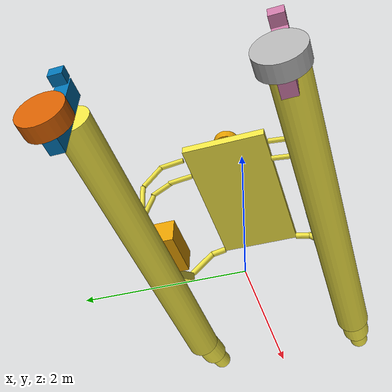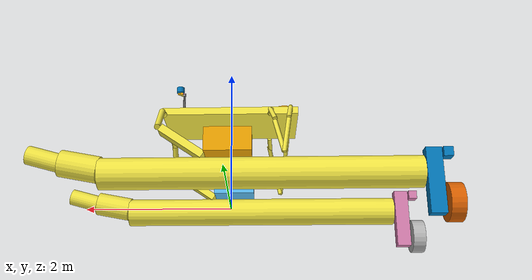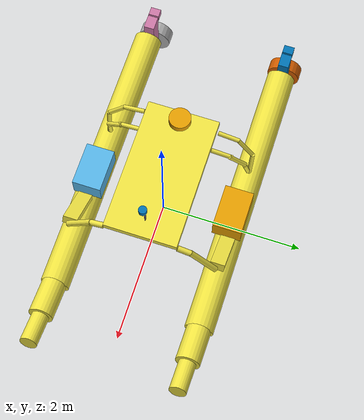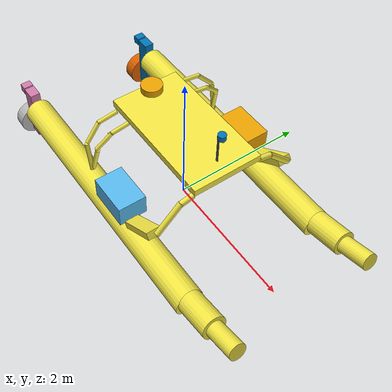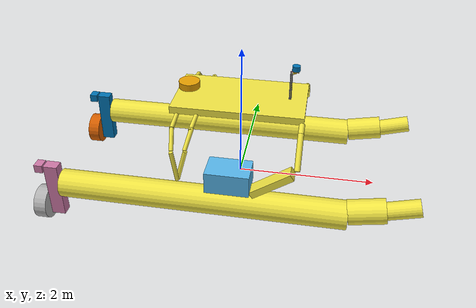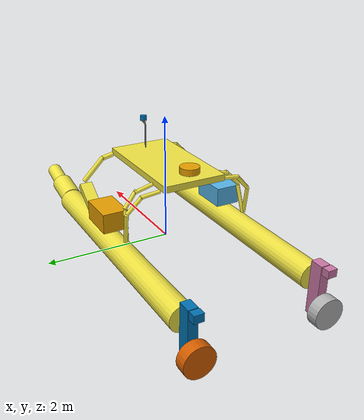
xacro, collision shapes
<?xml version="1.0" ?>
<robot xmlns:xacro="http://ros.org/wiki/xacro" name="wamv">
  <!-- Include macros for dynamic plugins -->
  <xacro:include filename="$(find moos_gazebo)/config/wamv/components/component_macros.xacro" />

  <xacro:arg name="tf_prefix" default="tf_prefix_not_set"/>
  <xacro:property name="tf_prefix" value="$(arg tf_prefix)" scope="global"/>

  <!-- Note: this is only used for some sensors that do not correctly use
       the robotNamespace parameter -->
  <xacro:arg name="namespace" default="namespace_not_set"/>
  <xacro:property name="namespace" value="$(arg namespace)" scope="global"/>

  <!-- Robot Mesh -->
  <xacro:include filename="$(find moos_gazebo)/config/wamv/wamv_base.urdf.xacro"/>

  <!-- Load Sensors -->
  <xacro:arg name="sensor_namespace" default="sensors/"/>
  <xacro:property name="sensor_namespace" value="$(arg sensor_namespace)" scope="global"/>
  <xacro:arg name="camera_namespace" default="cameras/"/>
  <xacro:property name="camera_namespace" value="$(arg camera_namespace)" scope="global"/>
  <!-- Front Camera Generic if there is not a URDF set up by camera driver: 'camera.xacro' -->
  <xacro:camera name="front_camera" x="0.75" y="0.0" z="1.7283" />
  <!-- OAK-D TF and URDF is launch within the specific launch file -->
  <!-- Port Camera Generic: 'camera.xacro' -->
  <!-- Front Lidar -->
  <xacro:lidar name="front_lidar" x="0.75" z="1.7828"/>
  <!-- IMU/GNSS  -->
  <xacro:imu name="imu_gnss_xsens" x="0.77" />
  <!-- GPS -->
  <xacro:gps name="gps_hemisphere" x="-0.75"  />
  <!-- Marine Radar -->
  <!-- This is only a model to represent transforms,
       do not yet have a working marine radar simulator -->
  <xacro:radar name="radar_broadband" x="0.75" z="1.95"/>

</robot>

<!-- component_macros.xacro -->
<robot xmlns:xacro="http://ros.org/wiki/xacro" name="wamv">

  <!-- Sensor Macros -->
  <xacro:include filename="$(find moos_gazebo)/config/wamv/components/camera.xacro" />
  <xacro:include filename="$(find moos_gazebo)/config/wamv/components/lidar.xacro" />
  <xacro:include filename="$(find moos_gazebo)/config/wamv/components/imu.xacro" />
  <xacro:include filename="$(find moos_gazebo)/config/wamv/components/gps.xacro" />
  <xacro:include filename="$(find moos_gazebo)/config/wamv/components/radar.xacro" />
  <xacro:include filename="$(find moos_gazebo)/config/wamv/components/april.xacro" />
</robot>

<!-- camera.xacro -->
<robot xmlns:xacro="http://ros.org/wiki/xacro">
  <xacro:macro name="camera" params="name x:=0.5 y:=0 z:=1.5 post_z_from:=1.2965 R:=0 P:=0 Y:=0 post_Y:=0 visualize:=False">
    <!-- Define length variables for link positioning -->
    <xacro:property name="platform_z" value="${post_z_from}"/>
    <xacro:property name="post_to_post_arm_x" value="0.03"/>
    <xacro:property name="post_arm_to_camera_x" value="0.02"/>
    <xacro:property name="post_arm_to_camera_z" value="0.027"/>

    <!-- Monocular Camera -->
    <link name="${tf_prefix}/${namespace}/${name}_link">
      <visual name="${name}_visual">
        <origin xyz="-0.033 0 0" rpy="0 0 ${pi/2}"/>
        <geometry>
          <mesh filename="package://vrx_gazebo/models/mono_camera/mesh/mono_camera.dae"/>
        </geometry>
      </visual>
      <collision name="${name}_lens_collision">
        <origin xyz="0.018 0 0" rpy="0 ${pi/2} 0"/>
        <geometry>
          <cylinder radius="0.015" length="0.042"/>
        </geometry>
      </collision>
      <collision name="${name}_box_collision">
        <origin xyz="-0.0205 0 0" rpy="0 0 0"/>
        <geometry>
          <box size="0.036 0.03 0.03"/>
        </geometry>
      </collision>
      <inertial>
        <mass value="0.3"/>
        <inertia
          ixx="0.0000450"
          iyy="0.0001746"
          izz="0.0001746"
          ixy="0"
          ixz="0"
          iyz="0"/>
      </inertial>
    </link>

    <!-- Define a link for the optical frame.  This will match the sensor frame and
         be oriented in the camera convention. -->
    <link name="${tf_prefix}/${namespace}/${name}_link_optical">
    </link>

    <!-- Define post length and mass based on desired z position of sensor -->
    <xacro:property name="post_length" value="${z-platform_z-post_arm_to_camera_z}"/>
    <xacro:property name="post_mass_per_meter" value="0.9"/>
    <xacro:property name="post_mass" value="${post_mass_per_meter * post_length}"/>
    <xacro:property name="post_radius" value="0.0076"/>

    <!-- Sensor post -->
    <link name="${tf_prefix}/${namespace}/${name}_post_link">
      <visual>
        <geometry>
          <cylinder radius="${post_radius}" length="${post_length}"/>
        </geometry>
        <material name="${name}_post_material">
          <color rgba="0.0 0.0 0.0 1.0"/>
        </material>
      </visual>
      <collision name="${name}_post_collision">
        <geometry>
          <cylinder radius="${post_radius}" length="${post_length}"/>
        </geometry>
      </collision>
      <inertial>
        <mass value="${post_mass}"/>
        <inertia
          ixx="${(post_mass/12) * (3*post_radius*post_radius + post_length*post_length)}"
          iyy="${(post_mass/12) * (3*post_radius*post_radius + post_length*post_length)}"
          izz="${(post_mass/2) * (post_radius*post_radius)}"
          ixy="0"
          ixz="0"
          iyz="0"/>
      </inertial>
    </link>

    <!-- Sensor post arm -->
    <link name="${tf_prefix}/${namespace}/${name}_post_arm_link">
      <visual name="${name}_post_arm_visual">
        <origin xyz="-0.038 0 -0.003" rpy="${radians(-60)} 0 ${-pi/2}"/>
        <geometry>
          <mesh filename="package://vrx_gazebo/models/sensor_post/mesh/sensor_post_arm.dae"/>
        </geometry>
      </visual>
      <collision name="${name}_post_arm_collision">
        <origin xyz="0 0 0" rpy="${radians(-60)-pi/20} 0 ${-pi/2}"/>
        <geometry>
          <cylinder radius="0.008" length="0.065"/>
        </geometry>
      </collision>
      <inertial>
        <origin xyz="0 0 0" rpy="${radians(-60)-pi/20} 0 ${-pi/2}"/>
        <mass value="0.1"/>
        <inertia
          ixx="0.00003680833"
          iyy="0.00003680833"
          izz="0.00000320000"
          ixy="0"
          ixz="0"
          iyz="0"/>
      </inertial>
    </link>

    <!-- Base to sensor post joint -->
    <xacro:property name="post_z" value="${platform_z+post_length/2}"/>
    <xacro:property name="post_to_camera_x" value="${post_to_post_arm_x+post_arm_to_camera_x}"/>
    <joint name="${tf_prefix}/${namespace}/base_to_${name}_post_joint" type="fixed">
      <origin xyz="${x-(post_to_camera_x)*cos(post_Y)} ${y-(post_to_camera_x)*sin(post_Y)} ${post_z}" rpy="0 0 ${post_Y}" />
      <parent link="${tf_prefix}/${namespace}/base_link" />
      <child link="${tf_prefix}/${namespace}/${name}_post_link" />
    </joint>

    <!-- Sensor post to sensor post arm joint -->
    <joint name="${tf_prefix}/${namespace}/${name}_post_to_${name}_post_arm_joint" type="fixed">
      <origin xyz="${post_to_post_arm_x} 0 ${z-post_z-post_arm_to_camera_z}" rpy="0 0 0" />
      <parent link="${tf_prefix}/${namespace}/${name}_post_link" />
      <child link="${tf_prefix}/${namespace}/${name}_post_arm_link" />
    </joint>

    <!-- Sensor post arm to camera joint -->
    <joint name="${tf_prefix}/${namespace}/${name}_post_arm_to_${name}_joint" type="fixed">
      <origin xyz="${post_arm_to_camera_x} 0 ${post_arm_to_camera_z}" rpy="${R} ${P} ${Y-post_Y}" />
      <parent link="${tf_prefix}/${namespace}/${name}_post_arm_link" />
      <child link="${tf_prefix}/${namespace}/${name}_link" />
    </joint>

    <!-- Camera to optical frame joint.  This is oriented to convert between ENU
         and camera conventions -->
    <joint name="${tf_prefix}/${namespace}/${name}_to_${name}_link_optical_joint" type="fixed">
      <origin xyz="0 0 0" rpy="${-pi/2} 0 ${-pi/2}" />
      <parent link="${tf_prefix}/${namespace}/${name}_link" />
      <child link="${tf_prefix}/${namespace}/${name}_link_optical" />
    </joint>

    <!-- Gazebo camera setup -->
    <gazebo reference="${tf_prefix}/${namespace}/${name}_link">
      <sensor type="camera" name="${name}_sensor">
        <update_rate>30.0</update_rate>
        <xacro:if value="${visualize}">
          <visualize>true</visualize>
        </xacro:if>
        <camera name="${name}_camera">
          <horizontal_fov>1.3962634</horizontal_fov>
          <image>
            <width>1280</width>
            <height>720</height>
            <format>R8G8B8</format>
          </image>
          <clip>
            <near>0.05</near>
            <far>300</far>
          </clip>
          <noise>
            <type>gaussian</type>
            <mean>0.0</mean>
            <stddev>0.007</stddev>
          </noise>
        </camera>
        <plugin name="camera_plugin_${name}" filename="libgazebo_ros_camera.so">
          <alwaysOn>true</alwaysOn>
          <updateRate>0.0</updateRate>
          <cameraName>${namespace}/${sensor_namespace}${camera_namespace}${name}</cameraName>
          <imageTopicName>image_raw</imageTopicName>
          <cameraInfoTopicName>camera_info</cameraInfoTopicName>
          <frameName>${tf_prefix}/${namespace}/${name}_link_optical</frameName>
          <hackBaseline>0.07</hackBaseline>
          <distortionK1>0.0</distortionK1>
          <distortionK2>0.0</distortionK2>
          <distortionK3>0.0</distortionK3>
          <distortionT1>0.0</distortionT1>
          <distortionT2>0.0</distortionT2>
        </plugin>
      </sensor>
    </gazebo>

    <!-- Set color of post -->
    <gazebo reference="${tf_prefix}/${namespace}/${name}_post_link">
      <material>Gazebo/Black</material>
    </gazebo>

  </xacro:macro>
</robot>

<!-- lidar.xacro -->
<robot xmlns:xacro="http://ros.org/wiki/xacro">
  <xacro:macro name="lidar" params="name
                                            x:=0.7 y:=0 z:=1.8
                                            R:=0 P:=0 Y:=0
                                            post_Y:=0 post_z_from:=1.2965
                                            update_rate:=10 vertical_lasers:=16 samples:=1875 resolution:=0.1
                                            min_angle:=${-pi} max_angle:=${pi}
                                            min_vertical_angle:=${-pi/12} max_vertical_angle:=${pi/12}
                                            max_range:=130 noise_stddev:=0.01">
    <!-- Define length variables for link positioning -->
    <xacro:property name="platform_z" value="${post_z_from}"/>
    <xacro:property name="post_to_post_arm_x" value="0.03"/>
    <xacro:property name="post_arm_to_lidar_x" value="0.04"/>
    <xacro:property name="post_arm_to_lidar_z" value="0.05"/>

    <!-- 3d lidar sensor -->
    <link name="${tf_prefix}/${namespace}/${name}_link">
      <visual name="${name}_visual">
        <origin xyz="0 0 -0.035" rpy="0 0 0"/>
        <geometry>
          <mesh filename="package://vrx_gazebo/models/3d_lidar/mesh/3d_lidar.dae"/>
        </geometry>
      </visual>
      <collision name="${name}_collision">
        <geometry>
          <cylinder radius="0.055" length="0.075"/>
        </geometry>
      </collision>
      <inertial>
        <mass value="1"/>
        <inertia
          ixx="0.00109375"
          iyy="0.00109375"
          izz="0.00125"
          ixy="0"
          ixz="0"
          iyz="0"/>
      </inertial>
    </link>

    <!-- Define post length and mass based on desired z position of sensor -->
    <xacro:property name="post_length" value="${z-platform_z-post_arm_to_lidar_z}"/>
    <xacro:property name="post_mass_per_meter" value="0.9"/>
    <xacro:property name="post_mass" value="${post_mass_per_meter * post_length}"/>
    <xacro:property name="post_radius" value="0.0076"/>

    <!-- Sensor post -->
    <link name="${tf_prefix}/${namespace}/${name}_post_link">
      <visual>
        <geometry>
          <cylinder radius="${post_radius}" length="${post_length}"/>
        </geometry>
        <material name="${name}_post_material">
          <color rgba="0.0 0.0 0.0 1.0"/>
        </material>
      </visual>
      <collision name="${name}_post_collision">
        <geometry>
          <cylinder radius="${post_radius}" length="${post_length}"/>
        </geometry>
      </collision>
      <inertial>
        <mass value="${post_mass}"/>
        <inertia
          ixx="${(post_mass/12) * (3*post_radius*post_radius + post_length*post_length)}"
          iyy="${(post_mass/12) * (3*post_radius*post_radius + post_length*post_length)}"
          izz="${(post_mass/2) * (post_radius*post_radius)}"
          ixy="0"
          ixz="0"
          iyz="0"/>
      </inertial>
    </link>

    <!-- Sensor post arm -->
    <link name="${tf_prefix}/${namespace}/${name}_post_arm_link">
      <visual name="${name}_post_arm_visual">
        <origin xyz="-0.038 0 -0.003" rpy="${radians(-60)} 0 ${-pi/2}"/>
        <geometry>
          <mesh filename="package://vrx_gazebo/models/sensor_post/mesh/sensor_post_arm.dae"/>
        </geometry>
      </visual>
      <collision name="${name}_post_arm_collision">
        <origin xyz="0 0 0" rpy="${radians(-60)-pi/20} 0 ${-pi/2}"/>
        <geometry>
          <cylinder radius="0.008" length="0.065"/>
        </geometry>
      </collision>
      <inertial>
        <origin xyz="0 0 0" rpy="${radians(-60)-pi/20} 0 ${-pi/2}"/>
        <mass value="0.1"/>
        <inertia
          ixx="0.00003680833"
          iyy="0.00003680833"
          izz="0.00000320000"
          ixy="0"
          ixz="0"
          iyz="0"/>
      </inertial>
    </link>

    <!-- Base to sensor post joint -->
    <xacro:property name="post_z" value="${platform_z+post_length/2}"/>
    <xacro:property name="post_to_lidar_x" value="${post_to_post_arm_x+post_arm_to_lidar_x}"/>
    <joint name="${tf_prefix}/${namespace}/base_to_${name}_post_joint" type="fixed">
      <origin xyz="${x-(post_to_lidar_x)*cos(post_Y)} ${y-(post_to_lidar_x)*sin(post_Y)} ${post_z}" rpy="0 0 ${post_Y}" />
      <parent link="${tf_prefix}/${namespace}/base_link" />
      <child link="${tf_prefix}/${namespace}/${name}_post_link" />
    </joint>

    <!-- Sensor post to sensor post arm joint -->
    <joint name="${tf_prefix}/${namespace}/${name}_post_to_${name}_post_arm_joint" type="fixed">
      <origin xyz="${post_to_post_arm_x} 0 ${z-post_z-post_arm_to_lidar_z}" rpy="0 0 0" />
      <parent link="${tf_prefix}/${namespace}/${name}_post_link" />
      <child link="${tf_prefix}/${namespace}/${name}_post_arm_link" />
    </joint>

    <!-- Sensor post arm to lidar joint -->
    <joint name="${tf_prefix}/${namespace}/${name}_post_arm_to_${name}_joint" type="fixed">
      <origin xyz="${post_arm_to_lidar_x} 0 ${post_arm_to_lidar_z}" rpy="${R} ${P} ${Y-post_Y}" />
      <parent link="${tf_prefix}/${namespace}/${name}_post_arm_link" />
      <child link="${tf_prefix}/${namespace}/${name}_link" />
    </joint>

    <gazebo reference="${tf_prefix}/${namespace}/${name}_link">
      <sensor type="gpu_ray" name="${name}_sensor">
        <update_rate>${update_rate}</update_rate>
        <ray>
          <scan>
            <horizontal>
              <samples>${samples/resolution}</samples>
              <resolution>${resolution}</resolution>
              <min_angle>${min_angle}</min_angle>
              <max_angle>${max_angle}</max_angle>
            </horizontal>
            <vertical>
              <samples>${vertical_lasers}</samples>
              <resolution>1</resolution>
              <min_angle>${min_vertical_angle}</min_angle>
              <max_angle>${max_vertical_angle}</max_angle>
            </vertical>
          </scan>
          <range>
            <min>0.1</min>
            <max>${max_range}</max>
          </range>
          <noise>
            <type>gaussian</type>
            <mean>0.0</mean>
            <stddev>${noise_stddev}</stddev>
          </noise>
        </ray>
        <plugin name="${name}_plugin" filename="libgazebo_ros_velodyne_gpu_laser.so">
          <topicName>${namespace}/${sensor_namespace}lidars/${name}/points</topicName>
          <frameName>${namespace}/${name}_link</frameName>
          <min_intensity>0</min_intensity>
        </plugin>
      </sensor>
    </gazebo>

    <!-- Set color of post -->
    <gazebo reference="${tf_prefix}/${namespace}/${name}_post_link">
      <material>Gazebo/Black</material>
    </gazebo>
  </xacro:macro>
</robot>

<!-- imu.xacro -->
<robot xmlns:xacro="http://ros.org/wiki/xacro">
  <xacro:macro name="imu" params="name:=imu x:=0.3 y:=0.0 z:=1.3 R:=0 P:=0 Y:=0 update_rate:=15">
    <link name="${tf_prefix}/${namespace}/${name}_link">
      <visual name="${name}_visual">
        <geometry>
          <box size="0.05 0.025 0.005" />
        </geometry>
        <material name="${name}_visual_material">
          <color rgba="1.0 0.0 00 1.0" />
        </material>
      </visual>
      <inertial>
        <mass value="0.1"/>
        <inertia ixx="0.000083" ixy="0.0" ixz="0.0" iyy="0.000083" iyz="0.0" izz="0.0125"/>
      </inertial>
    </link>
    <joint name="${tf_prefix}/${namespace}/${name}_joint" type="revolute">
      <axis xyz="0 0 1"/>
      <limit effort="1000.0" lower="0.0" upper="0" velocity="0"/>
      <origin xyz="${x} ${y} ${z}" rpy="${R} ${P} ${Y}"/>
      <parent link="${tf_prefix}/${namespace}/base_link"/>
      <child link="${tf_prefix}/${namespace}/${name}_link"/>
    </joint>
    <gazebo>
      <plugin name="imu_plugin_${name}" filename="libhector_gazebo_ros_imu.so">
        <updateRate>${update_rate}</updateRate>
        <bodyName>${tf_prefix}/${namespace}/${name}_link</bodyName>
        <topicName>${namespace}/${sensor_namespace}imu/imu/data</topicName>
        <serviceName>${namespace}/${sensor_namespace}imu_service</serviceName>
        <!-- Manually prepend namespace to tf frame. -->
        <frameId>${tf_prefix}/${namespace}/${name}_link</frameId>
        <alwaysOn>true</alwaysOn>

        <accelOffset>0.0 0.0 0.0</accelOffset>
        <accelDrift>0.0 0.0 0.0</accelDrift>
        <accelDriftFrequency>0.00027 0.00027 0.000027</accelDriftFrequency>
        <accelGaussianNoise>0.0 0.0 0.0</accelGaussianNoise>

        <rateOffset>0.0 0.0 0.0</rateOffset>
        <rateDrift>0.0 0.0 0.0</rateDrift>
        <rateDriftFrequency>0.00027 0.00027 0.000027</rateDriftFrequency>
        <rateGaussianNoise>0.0 0.0 0.0</rateGaussianNoise>

        <yawOffset>0.0</yawOffset>
        <yawDrift>0.0</yawDrift>
        <yawDriftFrequency>0.00027</yawDriftFrequency>
        <yawGaussianNoise>0.0</yawGaussianNoise>

      </plugin>
    </gazebo>
  </xacro:macro>
</robot>

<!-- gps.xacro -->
<robot xmlns:xacro="http://ros.org/wiki/xacro">
  <xacro:macro name="gps" params="name:=gps x:=0.3 y:=0 z:=1.3
				       R:=0 P:=0 Y:=0 update_rate:=15">
    <link name="${tf_prefix}/${namespace}/${name}_link">
      <visual name="${name}_visual">
        <geometry>
          <mesh filename="package://wamv_gazebo/models/gps/mesh/gps.dae"/>
        </geometry>
      </visual>
      <collision name="${name}_collision_base">
        <origin xyz="0 0 0.025" rpy="0 0 0" />
        <geometry>
          <cylinder length="0.05" radius="0.015" />
        </geometry>
      </collision>
      <collision name="${name}_collision_antenna">
        <origin xyz="0 0 0.11" rpy="0 0 0" />
        <geometry>
          <cylinder length="0.1" radius="0.15" />
        </geometry>
      </collision>
      <inertial>
        <mass value="1"/>
        <inertia ixx="0.006458" ixy="0.0" ixz="0.0"
		 iyy="0.006458" iyz="0.0" izz="0.01125"/>
      </inertial>
    </link>
    <joint name="${tf_prefix}/${namespace}/${name}_joint" type="revolute">
      <axis xyz="0 0 1"/>
      <limit effort="1000.0" lower="0.0" upper="0" velocity="0"/>
      <origin xyz="${x} ${y} ${z}" rpy="${R} ${P} ${Y}" />
      <parent link="${tf_prefix}/${namespace}/base_link" />
      <child link="${tf_prefix}/${namespace}/${name}_link" />
    </joint>
    <gazebo>
      <plugin name="gps_plugin_${name}" filename="libhector_gazebo_ros_gps.so">
        <updateRate>${update_rate}</updateRate>
        <alwaysOn>true</alwaysOn>
        <bodyName>${tf_prefix}/${namespace}/${name}_link</bodyName>
        <!-- Manually prepend namespace to tf frame. -->
        <frameId>${tf_prefix}/${namespace}/${name}_link</frameId>
        <topicName>${namespace}/${sensor_namespace}gps/gps/fix</topicName>
        <velocityTopicName>${namespace}/${sensor_namespace}gps/gps/fix_velocity</velocityTopicName>
	<useWorldSphericalCoordinates>true</useWorldSphericalCoordinates>

        <offset>0.0 0.0 0.0</offset>
        <drift>0.0 0.0 0.0</drift>
        <gaussianNoise>0 0 0</gaussianNoise>
        <velocityOffset>0.0 0.0 0.0</velocityOffset>
        <velocityDrift>0.0 0.0 0.0</velocityDrift>
        <velocityGaussianNoise>0.0 0.0 0.0</velocityGaussianNoise>
      </plugin>
    </gazebo>
  </xacro:macro>
</robot>

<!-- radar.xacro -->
<robot xmlns:xacro="http://ros.org/wiki/xacro">
  <xacro:macro name="radar" params="name:=gps x:=0.3 y:=0 z:=1.3
				       R:=0 P:=0 Y:=0 update_rate:=15">
    <link name="${tf_prefix}/${namespace}/${name}_link">
      <visual name="${name}_visual">
        <geometry>
          <cylinder length="0.18" radius="0.244" />
        </geometry>
	<material name="${name}_visual_material">
	  <color rgba="1.0 1.0 1.0 1.0" />
	</material>
      </visual>
      <inertial>
        <mass value="1"/>
        <inertia ixx="0.006458" ixy="0.0" ixz="0.0"
		 iyy="0.006458" iyz="0.0" izz="0.01125"/>
      </inertial>
    </link>
    <joint name="${tf_prefix}/${namespace}/${name}_joint" type="revolute">
      <axis xyz="0 0 1"/>
      <limit effort="1000.0" lower="0.0" upper="0" velocity="0"/>
      <origin xyz="${x} ${y} ${z}" rpy="${R} ${P} ${Y}" />
      <parent link="${tf_prefix}/${namespace}/base_link" />
      <child link="${tf_prefix}/${namespace}/${name}_link" />
    </joint>
  </xacro:macro>
</robot>

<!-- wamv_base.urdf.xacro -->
<!-- WAMV Base with namespace changes 2023-12-12 -->
<!-- Basic WAM-V with gazebo plugins for dynamics -->
<robot name="wamv">
  <link name="${tf_prefix}/${namespace}/left_battery_link">
    <visual name="left_battery_visual">
      <origin rpy="0 0 0" xyz="0 -1.03 -.45"/>
      <geometry>
        <mesh filename="package://vrx_gazebo/models/battery/mesh/battery.dae"/>
      </geometry>
    </visual>
    <collision name="left_battery_collision">
      <origin rpy="0 0 0" xyz="0 0 .15"/>
      <geometry>
        <box size=".6 .4 .31"/>
      </geometry>
    </collision>
    <inertial>
      <origin rpy=" 0 0 0" xyz="0 0 .15"/>
      <mass value="23.5"/>
      <inertia ixx="0.5015291666666667" ixy="0" ixz="0" iyy="0.8931958333333333" iyz="0" izz="1.0183333333333333"/>
    </inertial>
  </link>
  <joint name="${tf_prefix}/${namespace}/left_chasis_battery_joint" type="fixed">
    <origin rpy="0 0 0" xyz="0 1 0.45"/>
    <parent link="${tf_prefix}/${namespace}/base_link"/>
    <child link="${tf_prefix}/${namespace}/left_battery_link"/>
  </joint>
  <link name="${tf_prefix}/${namespace}/right_battery_link">
    <visual name="right_battery_visual">
      <origin rpy="0 0 0" xyz="0 -1.03 -.45"/>
      <geometry>
        <mesh filename="package://vrx_gazebo/models/battery/mesh/battery.dae"/>
      </geometry>
    </visual>
    <collision name="right_battery_collision">
      <origin rpy="0 0 0" xyz="0 0 .15"/>
      <geometry>
        <box size=".6 .4 .31"/>
      </geometry>
    </collision>
    <inertial>
      <origin rpy=" 0 0 0" xyz="0 0 .15"/>
      <mass value="23.5"/>
      <inertia ixx="0.5015291666666667" ixy="0" ixz="0" iyy="0.8931958333333333" iyz="0" izz="1.0183333333333333"/>
    </inertial>
  </link>
  <joint name="${tf_prefix}/${namespace}/right_chasis_battery_joint" type="fixed">
    <origin rpy="0 0 0" xyz="0 -1 0.45"/>
    <parent link="${tf_prefix}/${namespace}/base_link"/>
    <child link="${tf_prefix}/${namespace}/right_battery_link"/>
  </joint>
  <link name="${tf_prefix}/${namespace}/base_link">
  </link>
  <joint name="${tf_prefix}/${namespace}/dummy_joint" type="fixed">
    <parent link="${tf_prefix}/${namespace}/base_link"/>
    <child link="${tf_prefix}/${namespace}/dummy_link"/>
  </joint>
  <!-- Basic model of the 16' WAM-V USV -->
  <link name="${tf_prefix}/${namespace}/dummy_link">
    <visual>
      <geometry>
        <mesh filename="package://wamv_description/models/WAM-V-Base/mesh/WAM-V-Base.dae"/>
      </geometry>
    </visual>
    <!-- Main float -->
    <collision name="left_float">
      <origin rpy="0 1.57 0" xyz="-0.4 1.03 0.2"/>
      <geometry>
        <cylinder length="4" radius="0.2"/>
      </geometry>
    </collision>
    <collision name="left_mid_float">
      <origin rpy="0 1.38 0" xyz="1.85 1.03 0.3"/>
      <geometry>
        <cylinder length="0.5" radius="0.17"/>
      </geometry>
    </collision>
    <collision name="left_front_float">
      <origin rpy="0 1.3 0" xyz="2.3 1.03 0.4"/>
      <geometry>
        <cylinder length="0.45" radius="0.12"/>
      </geometry>
    </collision>
    <!-- Front beam -->
    <collision name="front_left_beam_lower">
      <origin rpy="0.78 0 0" xyz="0.9 0.85 1"/>
      <geometry>
        <cylinder length="0.5" radius="0.04"/>
      </geometry>
    </collision>
    <collision name="front_left_beam_upper">
      <origin rpy="1.35 0 0" xyz="0.9 0.6 1.18"/>
      <geometry>
        <cylinder length="0.2" radius="0.04"/>
      </geometry>
    </collision>
    <!-- Mid beam -->
    <collision name="mid_left_beam_lower">
      <origin rpy="0.1 0.25 0" xyz="-0.65 0.99 0.7"/>
      <geometry>
        <cylinder length="0.45" radius="0.03"/>
      </geometry>
    </collision>
    <collision name="mid_left_beam_medium">
      <origin rpy="0.75 0.25 0" xyz="-0.57 0.87 1.05"/>
      <geometry>
        <cylinder length="0.32" radius="0.03"/>
      </geometry>
    </collision>
    <collision name="mid_left_beam_upper">
      <origin rpy="1.35 0.25 0" xyz="-0.55 0.65 1.17"/>
      <geometry>
        <cylinder length="0.3" radius="0.03"/>
      </geometry>
    </collision>
    <!-- Rear beam -->
    <collision name="rear_left_beam_lower">
      <origin rpy="0 -0.15 0" xyz="-0.74 1.03 0.7"/>
      <geometry>
        <cylinder length="0.45" radius="0.03"/>
      </geometry>
    </collision>
    <collision name="rear_left_beam_medium">
      <origin rpy="0.75 -0.15 0" xyz="-0.79 0.91 1.05"/>
      <geometry>
        <cylinder length="0.32" radius="0.03"/>
      </geometry>
    </collision>
    <collision name="rear_left_beam_upper">
      <origin rpy="1.45 -0.15 0" xyz="-0.81 0.67 1.18"/>
      <geometry>
        <cylinder length="0.3" radius="0.03"/>
      </geometry>
    </collision>
    <!-- Joint -->
    <collision name="left_joint">
      <origin rpy="0 -0.6 0" xyz="0.58 1.03 0.6"/>
      <geometry>
        <box size="0.65 0.2 0.1"/>
      </geometry>
    </collision>
    <!-- Main float -->
    <collision name="right_float">
      <origin rpy="0 1.57 0" xyz="-0.4 -1.03 0.2"/>
      <geometry>
        <cylinder length="4" radius="0.2"/>
      </geometry>
    </collision>
    <collision name="right_mid_float">
      <origin rpy="0 1.38 0" xyz="1.85 -1.03 0.3"/>
      <geometry>
        <cylinder length="0.5" radius="0.17"/>
      </geometry>
    </collision>
    <collision name="right_front_float">
      <origin rpy="0 1.3 0" xyz="2.3 -1.03 0.4"/>
      <geometry>
        <cylinder length="0.45" radius="0.12"/>
      </geometry>
    </collision>
    <!-- Front beam -->
    <collision name="front_right_beam_lower">
      <origin rpy="-0.78 0 0" xyz="0.9 -0.85 1"/>
      <geometry>
        <cylinder length="0.5" radius="0.04"/>
      </geometry>
    </collision>
    <collision name="front_right_beam_upper">
      <origin rpy="-1.35 0 0" xyz="0.9 -0.6 1.18"/>
      <geometry>
        <cylinder length="0.2" radius="0.04"/>
      </geometry>
    </collision>
    <!-- Mid beam -->
    <collision name="mid_right_beam_lower">
      <origin rpy="-0.1 0.25 0" xyz="-0.65 -0.99 0.7"/>
      <geometry>
        <cylinder length="0.45" radius="0.03"/>
      </geometry>
    </collision>
    <collision name="mid_right_beam_medium">
      <origin rpy="-0.75 0.25 0" xyz="-0.57 -0.87 1.05"/>
      <geometry>
        <cylinder length="0.32" radius="0.03"/>
      </geometry>
    </collision>
    <collision name="mid_right_beam_upper">
      <origin rpy="-1.35 0.25 0" xyz="-0.55 -0.65 1.17"/>
      <geometry>
        <cylinder length="0.3" radius="0.03"/>
      </geometry>
    </collision>
    <!-- Rear beam -->
    <collision name="rear_right_beam_lower">
      <origin rpy="0 -0.15 0" xyz="-0.74 -1.03 0.7"/>
      <geometry>
        <cylinder length="0.45" radius="0.03"/>
      </geometry>
    </collision>
    <collision name="rear_right_beam_medium">
      <origin rpy="-0.75 -0.15 0" xyz="-0.79 -0.91 1.05"/>
      <geometry>
        <cylinder length="0.32" radius="0.03"/>
      </geometry>
    </collision>
    <collision name="rear_right_beam_upper">
      <origin rpy="-1.45 -0.15 0" xyz="-0.81 -0.67 1.18"/>
      <geometry>
        <cylinder length="0.3" radius="0.03"/>
      </geometry>
    </collision>
    <!-- Joint -->
    <collision name="right_joint">
      <origin rpy="0 -0.6 0" xyz="0.58 -1.03 0.6"/>
      <geometry>
        <box size="0.65 0.2 0.1"/>
      </geometry>
    </collision>
    <!-- Top base -->
    <collision name="top_base">
      <origin rpy="0 0 0" xyz="0 -0 1.25"/>
      <geometry>
        <box size="1.85 1 0.1"/>
      </geometry>
    </collision>
    <inertial>
      <!-- From WAM-V spec sheet -->
      <mass value="180.0"/>
      <inertia ixx="120.0" ixy="0.0" ixz="0.0" iyy="393" iyz="0.0" izz="446.0"/>
    </inertial>
  </link>
  <link name="${tf_prefix}/${namespace}/left_engine_link">
    <visual>
      <geometry>
        <mesh filename="package://wamv_description/models/engine/mesh/engine.dae"/>
      </geometry>
    </visual>
    <collision name="left_engine_vertical_axis_collision">
      <origin rpy="0 0 0" xyz="-0.16 0 -0.24"/>
      <geometry>
        <box size="0.2 0.15 0.83"/>
      </geometry>
    </collision>
    <collision name="left_engine_rear_end_collision">
      <origin rpy="0 0 0" xyz="-0.34 0 0.12"/>
      <geometry>
        <box size="0.12 0.15 0.12"/>
      </geometry>
    </collision>
    <inertial>
      <mass value="15"/>
      <inertia ixx="0.889245" ixy="0.0" ixz="0.0" iyy="0.911125" iyz="0.0" izz="0.078125"/>
    </inertial>
  </link>
  <link name="${tf_prefix}/${namespace}/left_propeller_link">
    <visual>
      <geometry>
        <mesh filename="package://wamv_description/models/propeller/mesh/propeller.dae"/>
      </geometry>
    </visual>
    <collision name="left_propeller_collision">
      <origin rpy="0 1.57 0" xyz="-0.08 0 0"/>
      <geometry>
        <cylinder length="0.18" radius="0.24"/>
      </geometry>
    </collision>
    <inertial>
      <mass value="0.5"/>
      <inertia ixx="0.008545" ixy="0.0" ixz="0.0" iyy="0.008545" iyz="0.0" izz="0.0144"/>
    </inertial>
  </link>
  <joint name="${tf_prefix}/${namespace}/left_chasis_engine_joint" type="revolute">
    <axis xyz="0 0 1"/>
    <limit effort="10" lower="-3.141592653589793" upper="3.141592653589793" velocity="10"/>
    <origin rpy="0.0 0.0 0.0" xyz="-2.373776 1.027135 0.318237"/>
    <parent link="${tf_prefix}/${namespace}/base_link"/>
    <child link="${tf_prefix}/${namespace}/left_engine_link"/>
  </joint>
  <joint name="${tf_prefix}/${namespace}/left_engine_propeller_joint" type="continuous">
    <axis rpy="0 0 0" xyz="1 0 0"/>
    <parent link="${tf_prefix}/${namespace}/left_engine_link"/>
    <child link="${tf_prefix}/${namespace}/left_propeller_link"/>
    <origin rpy="0 0 0" xyz="-0.278156 0 -0.509371"/>
    <limit effort="100" velocity="100"/>
    <dynamics damping="0.05" friction="0.05"/>
  </joint>
  <link name="${tf_prefix}/${namespace}/right_engine_link">
    <visual>
      <geometry>
        <mesh filename="package://wamv_description/models/engine/mesh/engine.dae"/>
      </geometry>
    </visual>
    <collision name="right_engine_vertical_axis_collision">
      <origin rpy="0 0 0" xyz="-0.16 0 -0.24"/>
      <geometry>
        <box size="0.2 0.15 0.83"/>
      </geometry>
    </collision>
    <collision name="right_engine_rear_end_collision">
      <origin rpy="0 0 0" xyz="-0.34 0 0.12"/>
      <geometry>
        <box size="0.12 0.15 0.12"/>
      </geometry>
    </collision>
    <inertial>
      <mass value="15"/>
      <inertia ixx="0.889245" ixy="0.0" ixz="0.0" iyy="0.911125" iyz="0.0" izz="0.078125"/>
    </inertial>
  </link>
  <link name="${tf_prefix}/${namespace}/right_propeller_link">
    <visual>
      <geometry>
        <mesh filename="package://wamv_description/models/propeller/mesh/propeller.dae"/>
      </geometry>
    </visual>
    <collision name="right_propeller_collision">
      <origin rpy="0 1.57 0" xyz="-0.08 0 0"/>
      <geometry>
        <cylinder length="0.18" radius="0.24"/>
      </geometry>
    </collision>
    <inertial>
      <mass value="0.5"/>
      <inertia ixx="0.008545" ixy="0.0" ixz="0.0" iyy="0.008545" iyz="0.0" izz="0.0144"/>
    </inertial>
  </link>
  <joint name="${tf_prefix}/${namespace}/right_chasis_engine_joint" type="revolute">
    <axis xyz="0 0 1"/>
    <limit effort="10" lower="-3.141592653589793" upper="3.141592653589793" velocity="10"/>
    <origin rpy="0.0 0.0 0.0" xyz="-2.373776 -1.027135 0.318237"/>
    <parent link="${tf_prefix}/${namespace}/base_link"/>
    <child link="${tf_prefix}/${namespace}/right_engine_link"/>
  </joint>
  <joint name="${tf_prefix}/${namespace}/right_engine_propeller_joint" type="continuous">
    <axis rpy="0 0 0" xyz="1 0 0"/>
    <parent link="${tf_prefix}/${namespace}/right_engine_link"/>
    <child link="${tf_prefix}/${namespace}/right_propeller_link"/>
    <origin rpy="0 0 0" xyz="-0.278156 0 -0.509371"/>
    <limit effort="100" velocity="100"/>
    <dynamics damping="0.05" friction="0.05"/>
  </joint>
  <gazebo>
    <plugin filename="libusv_gazebo_thrust_plugin.so" name="wamv_gazebo_thrust">
      <cmdTimeout>1.0</cmdTimeout>
      <thruster>
        <!-- Required Parameters -->
        <linkName>${tf_prefix}/${namespace}/left_propeller_link</linkName>
        <propJointName>${tf_prefix}/${namespace}/left_engine_propeller_joint</propJointName>
        <engineJointName>${tf_prefix}/${namespace}/left_chasis_engine_joint</engineJointName>
        <cmdTopic>${namespace}/thrusters/left_thrust_cmd</cmdTopic>
        <angleTopic>${namespace}/thrusters/left_thrust_angle</angleTopic>
        <enableAngle>True</enableAngle>
        <!-- Optional Parameters -->
        <mappingType>1</mappingType>
        <maxCmd>1.0</maxCmd>
        <maxForceFwd>250.0</maxForceFwd>
        <maxForceRev>-100.0</maxForceRev>
        <maxAngle>1.5707963267948966</maxAngle>
      </thruster>
      <thruster>
        <!-- Required Parameters -->
        <linkName>${tf_prefix}/${namespace}/right_propeller_link</linkName>
        <propJointName>${tf_prefix}/${namespace}/right_engine_propeller_joint</propJointName>
        <engineJointName>${tf_prefix}/${namespace}/right_chasis_engine_joint</engineJointName>
        <cmdTopic>${namespace}/thrusters/right_thrust_cmd</cmdTopic>
        <angleTopic>${namespace}/thrusters/right_thrust_angle</angleTopic>
        <enableAngle>True</enableAngle>
        <!-- Optional Parameters -->
        <mappingType>1</mappingType>
        <maxCmd>1.0</maxCmd>
        <maxForceFwd>250.0</maxForceFwd>
        <maxForceRev>-100.0</maxForceRev>
        <maxAngle>1.5707963267948966</maxAngle>
      </thruster>
    </plugin>
  </gazebo>
  <!-- custom plugin -->
  <gazebo>
    <plugin name="gazebo_ros_control" filename="libgazebo_ros_control.so">
      <robotNamespace>/${tf_prefix}/${namespace}</robotNamespace>
    </plugin>
  </gazebo>
  <!--Gazebo Plugin for simulating WAM-V dynamics-->
  <gazebo>
    <plugin filename="libusv_gazebo_dynamics_plugin.so" name="usv_dynamics_wamv_dynamics_plugin">
      <bodyName>${tf_prefix}/${namespace}/base_link</bodyName>
      <!-- Must be same as the ocean model!-->
      <waterLevel>0</waterLevel>
      <waterDensity>997.8</waterDensity>
      <!-- Added mass -->
      <xDotU>0.0</xDotU>
      <yDotV>0.0</yDotV>
      <nDotR>0.0</nDotR>
      <!-- Linear and quadratic drag -->
      <xU>51.3</xU>
      <xUU>72.4</xUU>
      <yV>40.0</yV>
      <yVV>0.0</yVV>
      <zW>500.0</zW>
      <kP>50.0</kP>
      <mQ>50.0</mQ>
      <nR>400.0</nR>
      <nRR>0.0</nRR>
      <!-- General dimensions -->
      <hullRadius>0.213</hullRadius>
      <boatWidth>2.4</boatWidth>
      <boatLength>4.9</boatLength>
      <!-- Length discretization, AKA, "N" -->
      <length_n>2</length_n>
      <!-- Wave model -->
      <wave_model>ocean_waves</wave_model>
    </plugin>
  </gazebo>

</robot>
